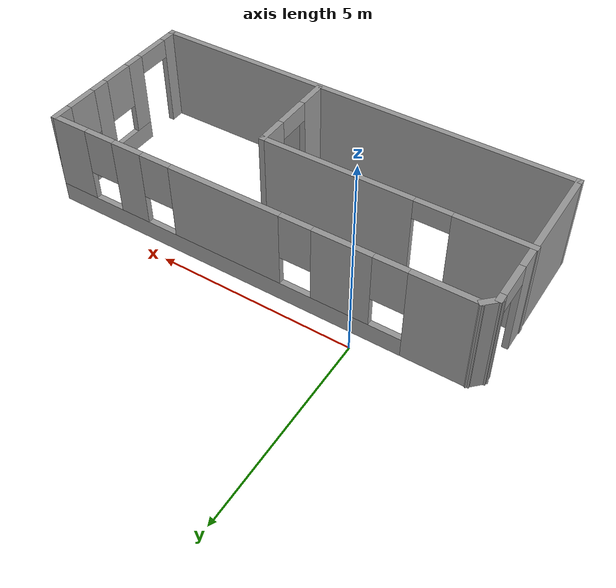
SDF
<?xml version='1.0'?>
<sdf version='1.7'>
  <model name='new-building'>
    <pose>2.73447 -2.4475 0 0 -0 0</pose>
    <link name='Wall_10'>
      <pose>1.04553 -1.1275 0 0 -0 -1.5708</pose>
      <visual name='Wall_10_Visual_0'>
        <pose>-0.8475 0 1.25 0 -0 0</pose>
        <geometry>
          <box>
            <size>0.805 0.15 2.5</size>
          </box>
        </geometry>
        <material>
          <script>
            <uri>file://media/materials/scripts/gazebo.material</uri>
            <name>Gazebo/Grey</name>
          </script>
          <ambient>1 1 1 1</ambient>
        </material>
        <meta>
          <layer>0</layer>
        </meta>
      </visual>
      <collision name='Wall_10_Collision_0'>
        <geometry>
          <box>
            <size>0.805 0.15 2.5</size>
          </box>
        </geometry>
        <pose>-0.8475 0 1.25 0 -0 0</pose>
      </collision>
      <visual name='Wall_10_Visual_1'>
        <pose>0.8525 0 1.25 0 -0 0</pose>
        <geometry>
          <box>
            <size>0.795 0.15 2.5</size>
          </box>
        </geometry>
        <material>
          <script>
            <uri>file://media/materials/scripts/gazebo.material</uri>
            <name>Gazebo/Grey</name>
          </script>
          <ambient>1 1 1 1</ambient>
        </material>
        <meta>
          <layer>0</layer>
        </meta>
      </visual>
      <collision name='Wall_10_Collision_1'>
        <geometry>
          <box>
            <size>0.795 0.15 2.5</size>
          </box>
        </geometry>
        <pose>0.8525 0 1.25 0 -0 0</pose>
      </collision>
      <visual name='Wall_10_Visual_2'>
        <pose>0.005 0 2.25 0 -0 0</pose>
        <geometry>
          <box>
            <size>0.9 0.15 0.5</size>
          </box>
        </geometry>
        <material>
          <script>
            <uri>file://media/materials/scripts/gazebo.material</uri>
            <name>Gazebo/Grey</name>
          </script>
          <ambient>1 1 1 1</ambient>
        </material>
        <meta>
          <layer>0</layer>
        </meta>
      </visual>
      <collision name='Wall_10_Collision_2'>
        <geometry>
          <box>
            <size>0.9 0.15 0.5</size>
          </box>
        </geometry>
        <pose>0.005 0 2.25 0 -0 0</pose>
      </collision>
    </link>
    <link name='Wall_3'>
      <pose>0.140533 1.9775 0 0 -0 0</pose>
      <visual name='Wall_3_Visual_0'>
        <pose>-4.6925 0 1.25 0 -0 0</pose>
        <geometry>
          <box>
            <size>1.615 0.15 2.5</size>
          </box>
        </geometry>
        <material>
          <script>
            <uri>file://media/materials/scripts/gazebo.material</uri>
            <name>Gazebo/Grey</name>
          </script>
          <ambient>1 1 1 1</ambient>
        </material>
        <meta>
          <layer>0</layer>
        </meta>
      </visual>
      <collision name='Wall_3_Collision_0'>
        <geometry>
          <box>
            <size>1.615 0.15 2.5</size>
          </box>
        </geometry>
        <pose>-4.6925 0 1.25 0 -0 0</pose>
      </collision>
      <visual name='Wall_3_Visual_1'>
        <pose>0.8075 0 0.25 0 -0 0</pose>
        <geometry>
          <box>
            <size>9.385 0.15 0.5</size>
          </box>
        </geometry>
        <material>
          <script>
            <uri>file://media/materials/scripts/gazebo.material</uri>
            <name>Gazebo/Grey</name>
          </script>
          <ambient>1 1 1 1</ambient>
        </material>
        <meta>
          <layer>0</layer>
        </meta>
      </visual>
      <collision name='Wall_3_Collision_1'>
        <geometry>
          <box>
            <size>9.385 0.15 0.5</size>
          </box>
        </geometry>
        <pose>0.8075 0 0.25 0 -0 0</pose>
      </collision>
      <visual name='Wall_3_Visual_2'>
        <pose>-2.365 0 1.5 0 -0 0</pose>
        <geometry>
          <box>
            <size>1.44 0.15 2</size>
          </box>
        </geometry>
        <material>
          <script>
            <uri>file://media/materials/scripts/gazebo.material</uri>
            <name>Gazebo/Grey</name>
          </script>
          <ambient>1 1 1 1</ambient>
        </material>
        <meta>
          <layer>0</layer>
        </meta>
      </visual>
      <collision name='Wall_3_Collision_2'>
        <geometry>
          <box>
            <size>1.44 0.15 2</size>
          </box>
        </geometry>
        <pose>-2.365 0 1.5 0 -0 0</pose>
      </collision>
      <visual name='Wall_3_Visual_3'>
        <pose>0.605 0 1.5 0 -0 0</pose>
        <geometry>
          <box>
            <size>2.9 0.15 2</size>
          </box>
        </geometry>
        <material>
          <script>
            <uri>file://media/materials/scripts/gazebo.material</uri>
            <name>Gazebo/Grey</name>
          </script>
          <ambient>1 1 1 1</ambient>
        </material>
        <meta>
          <layer>0</layer>
        </meta>
      </visual>
      <collision name='Wall_3_Collision_3'>
        <geometry>
          <box>
            <size>2.9 0.15 2</size>
          </box>
        </geometry>
        <pose>0.605 0 1.5 0 -0 0</pose>
      </collision>
      <visual name='Wall_3_Visual_4'>
        <pose>3.26 0 1.5 0 -0 0</pose>
        <geometry>
          <box>
            <size>0.81 0.15 2</size>
          </box>
        </geometry>
        <material>
          <script>
            <uri>file://media/materials/scripts/gazebo.material</uri>
            <name>Gazebo/Grey</name>
          </script>
          <ambient>1 1 1 1</ambient>
        </material>
        <meta>
          <layer>0</layer>
        </meta>
      </visual>
      <collision name='Wall_3_Collision_4'>
        <geometry>
          <box>
            <size>0.81 0.15 2</size>
          </box>
        </geometry>
        <pose>3.26 0 1.5 0 -0 0</pose>
      </collision>
      <visual name='Wall_3_Visual_5'>
        <pose>4.9825 0 1.5 0 -0 0</pose>
        <geometry>
          <box>
            <size>1.035 0.15 2</size>
          </box>
        </geometry>
        <material>
          <script>
            <uri>file://media/materials/scripts/gazebo.material</uri>
            <name>Gazebo/Grey</name>
          </script>
          <ambient>1 1 1 1</ambient>
        </material>
        <meta>
          <layer>0</layer>
        </meta>
      </visual>
      <collision name='Wall_3_Collision_5'>
        <geometry>
          <box>
            <size>1.035 0.15 2</size>
          </box>
        </geometry>
        <pose>4.9825 0 1.5 0 -0 0</pose>
      </collision>
      <visual name='Wall_3_Visual_6'>
        <pose>-3.485 0 1.9 0 -0 0</pose>
        <geometry>
          <box>
            <size>0.8 0.15 1.2</size>
          </box>
        </geometry>
        <material>
          <script>
            <uri>file://media/materials/scripts/gazebo.material</uri>
            <name>Gazebo/Grey</name>
          </script>
          <ambient>1 1 1 1</ambient>
        </material>
        <meta>
          <layer>0</layer>
        </meta>
      </visual>
      <collision name='Wall_3_Collision_6'>
        <geometry>
          <box>
            <size>0.8 0.15 1.2</size>
          </box>
        </geometry>
        <pose>-3.485 0 1.9 0 -0 0</pose>
      </collision>
      <visual name='Wall_3_Visual_7'>
        <pose>-1.245 0 1.9 0 -0 0</pose>
        <geometry>
          <box>
            <size>0.8 0.15 1.2</size>
          </box>
        </geometry>
        <material>
          <script>
            <uri>file://media/materials/scripts/gazebo.material</uri>
            <name>Gazebo/Grey</name>
          </script>
          <ambient>1 1 1 1</ambient>
        </material>
        <meta>
          <layer>0</layer>
        </meta>
      </visual>
      <collision name='Wall_3_Collision_7'>
        <geometry>
          <box>
            <size>0.8 0.15 1.2</size>
          </box>
        </geometry>
        <pose>-1.245 0 1.9 0 -0 0</pose>
      </collision>
      <visual name='Wall_3_Visual_8'>
        <pose>2.455 0 1.9 0 -0 0</pose>
        <geometry>
          <box>
            <size>0.8 0.15 1.2</size>
          </box>
        </geometry>
        <material>
          <script>
            <uri>file://media/materials/scripts/gazebo.material</uri>
            <name>Gazebo/Grey</name>
          </script>
          <ambient>1 1 1 1</ambient>
        </material>
        <meta>
          <layer>0</layer>
        </meta>
      </visual>
      <collision name='Wall_3_Collision_8'>
        <geometry>
          <box>
            <size>0.8 0.15 1.2</size>
          </box>
        </geometry>
        <pose>2.455 0 1.9 0 -0 0</pose>
      </collision>
      <visual name='Wall_3_Visual_9'>
        <pose>4.065 0 1.9 0 -0 0</pose>
        <geometry>
          <box>
            <size>0.8 0.15 1.2</size>
          </box>
        </geometry>
        <material>
          <script>
            <uri>file://media/materials/scripts/gazebo.material</uri>
            <name>Gazebo/Grey</name>
          </script>
          <ambient>1 1 1 1</ambient>
        </material>
        <meta>
          <layer>0</layer>
        </meta>
      </visual>
      <collision name='Wall_3_Collision_9'>
        <geometry>
          <box>
            <size>0.8 0.15 1.2</size>
          </box>
        </geometry>
        <pose>4.065 0 1.9 0 -0 0</pose>
      </collision>
    </link>
    <link name='Wall_4'>
      <pose>5.56553 -0.1975 0 0 -0 -1.5708</pose>
      <visual name='Wall_4_Visual_0'>
        <pose>-1.9825 0 1.25 0 -0 0</pose>
        <geometry>
          <box>
            <size>0.535 0.15 2.5</size>
          </box>
        </geometry>
        <material>
          <script>
            <uri>file://media/materials/scripts/gazebo.material</uri>
            <name>Gazebo/Grey</name>
          </script>
          <ambient>1 1 1 1</ambient>
        </material>
        <meta>
          <layer>0</layer>
        </meta>
      </visual>
      <collision name='Wall_4_Collision_0'>
        <geometry>
          <box>
            <size>0.535 0.15 2.5</size>
          </box>
        </geometry>
        <pose>-1.9825 0 1.25 0 -0 0</pose>
      </collision>
      <visual name='Wall_4_Visual_1'>
        <pose>1.9975 0 1.25 0 -0 0</pose>
        <geometry>
          <box>
            <size>0.505 0.15 2.5</size>
          </box>
        </geometry>
        <material>
          <script>
            <uri>file://media/materials/scripts/gazebo.material</uri>
            <name>Gazebo/Grey</name>
          </script>
          <ambient>1 1 1 1</ambient>
        </material>
        <meta>
          <layer>0</layer>
        </meta>
      </visual>
      <collision name='Wall_4_Collision_1'>
        <geometry>
          <box>
            <size>0.505 0.15 2.5</size>
          </box>
        </geometry>
        <pose>1.9975 0 1.25 0 -0 0</pose>
      </collision>
      <visual name='Wall_4_Visual_2'>
        <pose>-0.435 0 0.25 0 -0 0</pose>
        <geometry>
          <box>
            <size>2.56 0.15 0.5</size>
          </box>
        </geometry>
        <material>
          <script>
            <uri>file://media/materials/scripts/gazebo.material</uri>
            <name>Gazebo/Grey</name>
          </script>
          <ambient>1 1 1 1</ambient>
        </material>
        <meta>
          <layer>0</layer>
        </meta>
      </visual>
      <collision name='Wall_4_Collision_2'>
        <geometry>
          <box>
            <size>2.56 0.15 0.5</size>
          </box>
        </geometry>
        <pose>-0.435 0 0.25 0 -0 0</pose>
      </collision>
      <visual name='Wall_4_Visual_3'>
        <pose>-0.68 0 1.5 0 -0 0</pose>
        <geometry>
          <box>
            <size>0.47 0.15 2</size>
          </box>
        </geometry>
        <material>
          <script>
            <uri>file://media/materials/scripts/gazebo.material</uri>
            <name>Gazebo/Grey</name>
          </script>
          <ambient>1 1 1 1</ambient>
        </material>
        <meta>
          <layer>0</layer>
        </meta>
      </visual>
      <collision name='Wall_4_Collision_3'>
        <geometry>
          <box>
            <size>0.47 0.15 2</size>
          </box>
        </geometry>
        <pose>-0.68 0 1.5 0 -0 0</pose>
      </collision>
      <visual name='Wall_4_Visual_4'>
        <pose>0.6 0 1.5 0 -0 0</pose>
        <geometry>
          <box>
            <size>0.49 0.15 2</size>
          </box>
        </geometry>
        <material>
          <script>
            <uri>file://media/materials/scripts/gazebo.material</uri>
            <name>Gazebo/Grey</name>
          </script>
          <ambient>1 1 1 1</ambient>
        </material>
        <meta>
          <layer>0</layer>
        </meta>
      </visual>
      <collision name='Wall_4_Collision_4'>
        <geometry>
          <box>
            <size>0.49 0.15 2</size>
          </box>
        </geometry>
        <pose>0.6 0 1.5 0 -0 0</pose>
      </collision>
      <visual name='Wall_4_Visual_5'>
        <pose>-1.315 0 1.9 0 -0 0</pose>
        <geometry>
          <box>
            <size>0.8 0.15 1.2</size>
          </box>
        </geometry>
        <material>
          <script>
            <uri>file://media/materials/scripts/gazebo.material</uri>
            <name>Gazebo/Grey</name>
          </script>
          <ambient>1 1 1 1</ambient>
        </material>
        <meta>
          <layer>0</layer>
        </meta>
      </visual>
      <collision name='Wall_4_Collision_5'>
        <geometry>
          <box>
            <size>0.8 0.15 1.2</size>
          </box>
        </geometry>
        <pose>-1.315 0 1.9 0 -0 0</pose>
      </collision>
      <visual name='Wall_4_Visual_6'>
        <pose>-0.045 0 1.9 0 -0 0</pose>
        <geometry>
          <box>
            <size>0.8 0.15 1.2</size>
          </box>
        </geometry>
        <material>
          <script>
            <uri>file://media/materials/scripts/gazebo.material</uri>
            <name>Gazebo/Grey</name>
          </script>
          <ambient>1 1 1 1</ambient>
        </material>
        <meta>
          <layer>0</layer>
        </meta>
      </visual>
      <collision name='Wall_4_Collision_6'>
        <geometry>
          <box>
            <size>0.8 0.15 1.2</size>
          </box>
        </geometry>
        <pose>-0.045 0 1.9 0 -0 0</pose>
      </collision>
      <visual name='Wall_4_Visual_7'>
        <pose>1.295 0 2.25 0 -0 0</pose>
        <geometry>
          <box>
            <size>0.9 0.15 0.5</size>
          </box>
        </geometry>
        <material>
          <script>
            <uri>file://media/materials/scripts/gazebo.material</uri>
            <name>Gazebo/Grey</name>
          </script>
          <ambient>1 1 1 1</ambient>
        </material>
        <meta>
          <layer>0</layer>
        </meta>
      </visual>
      <collision name='Wall_4_Collision_7'>
        <geometry>
          <box>
            <size>0.9 0.15 0.5</size>
          </box>
        </geometry>
        <pose>1.295 0 2.25 0 -0 0</pose>
      </collision>
    </link>
    <link name='Wall_5'>
      <collision name='Wall_5_Collision'>
        <geometry>
          <box>
            <size>11.25 0.15 2.5</size>
          </box>
        </geometry>
        <pose>0 0 1.25 0 -0 0</pose>
      </collision>
      <visual name='Wall_5_Visual'>
        <pose>0 0 1.25 0 -0 0</pose>
        <geometry>
          <box>
            <size>11.25 0.15 2.5</size>
          </box>
        </geometry>
        <material>
          <script>
            <uri>file://media/materials/scripts/gazebo.material</uri>
            <name>Gazebo/Grey</name>
          </script>
          <ambient>1 1 1 1</ambient>
        </material>
        <meta>
          <layer>0</layer>
        </meta>
      </visual>
      <pose>0.015533 -2.3725 0 0 -0 3.14159</pose>
    </link>
    <link name='Wall_6'>
      <pose>-5.53447 -0.3225 0 0 -0 1.5708</pose>
      <visual name='Wall_6_Visual_0'>
        <pose>-0.5725 0 1.25 0 -0 0</pose>
        <geometry>
          <box>
            <size>3.105 0.15 2.5</size>
          </box>
        </geometry>
        <material>
          <script>
            <uri>file://media/materials/scripts/gazebo.material</uri>
            <name>Gazebo/Grey</name>
          </script>
          <ambient>1 1 1 1</ambient>
        </material>
        <meta>
          <layer>0</layer>
        </meta>
      </visual>
      <collision name='Wall_6_Collision_0'>
        <geometry>
          <box>
            <size>3.105 0.15 2.5</size>
          </box>
        </geometry>
        <pose>-0.5725 0 1.25 0 -0 0</pose>
      </collision>
      <visual name='Wall_6_Visual_1'>
        <pose>2.0025 0 1.25 0 -0 0</pose>
        <geometry>
          <box>
            <size>0.245 0.15 2.5</size>
          </box>
        </geometry>
        <material>
          <script>
            <uri>file://media/materials/scripts/gazebo.material</uri>
            <name>Gazebo/Grey</name>
          </script>
          <ambient>1 1 1 1</ambient>
        </material>
        <meta>
          <layer>0</layer>
        </meta>
      </visual>
      <collision name='Wall_6_Collision_1'>
        <geometry>
          <box>
            <size>0.245 0.15 2.5</size>
          </box>
        </geometry>
        <pose>2.0025 0 1.25 0 -0 0</pose>
      </collision>
      <visual name='Wall_6_Visual_2'>
        <pose>1.43 0 2.25 0 -0 0</pose>
        <geometry>
          <box>
            <size>0.9 0.15 0.5</size>
          </box>
        </geometry>
        <material>
          <script>
            <uri>file://media/materials/scripts/gazebo.material</uri>
            <name>Gazebo/Grey</name>
          </script>
          <ambient>1 1 1 1</ambient>
        </material>
        <meta>
          <layer>0</layer>
        </meta>
      </visual>
      <collision name='Wall_6_Collision_2'>
        <geometry>
          <box>
            <size>0.9 0.15 0.5</size>
          </box>
        </geometry>
        <pose>1.43 0 2.25 0 -0 0</pose>
      </collision>
    </link>
    <link name='Wall_7'>
      <collision name='Wall_7_Collision'>
        <geometry>
          <box>
            <size>0.503553 0.15 2.5</size>
          </box>
        </geometry>
        <pose>0 0 1.25 0 -0 0</pose>
      </collision>
      <visual name='Wall_7_Visual'>
        <pose>0 0 1.25 0 -0 0</pose>
        <geometry>
          <box>
            <size>0.503553 0.15 2.5</size>
          </box>
        </geometry>
        <material>
          <script>
            <uri>file://media/materials/scripts/gazebo.material</uri>
            <name>Gazebo/Grey</name>
          </script>
          <ambient>1 1 1 1</ambient>
        </material>
        <meta>
          <layer>0</layer>
        </meta>
      </visual>
      <pose>-5.40947 1.8525 0 0 -0 0.785398</pose>
    </link>
    <link name='Wall_9'>
      <pose>-2.25447 0.0475 0 0 -0 0</pose>
      <visual name='Wall_9_Visual_0'>
        <pose>-2.4225 0 1.25 0 -0 0</pose>
        <geometry>
          <box>
            <size>1.905 0.15 2.5</size>
          </box>
        </geometry>
        <material>
          <script>
            <uri>file://media/materials/scripts/gazebo.material</uri>
            <name>Gazebo/Grey</name>
          </script>
          <ambient>1 1 1 1</ambient>
        </material>
        <meta>
          <layer>0</layer>
        </meta>
      </visual>
      <collision name='Wall_9_Collision_0'>
        <geometry>
          <box>
            <size>1.905 0.15 2.5</size>
          </box>
        </geometry>
        <pose>-2.4225 0 1.25 0 -0 0</pose>
      </collision>
      <visual name='Wall_9_Visual_1'>
        <pose>1.4025 0 1.25 0 -0 0</pose>
        <geometry>
          <box>
            <size>3.945 0.15 2.5</size>
          </box>
        </geometry>
        <material>
          <script>
            <uri>file://media/materials/scripts/gazebo.material</uri>
            <name>Gazebo/Grey</name>
          </script>
          <ambient>1 1 1 1</ambient>
        </material>
        <meta>
          <layer>0</layer>
        </meta>
      </visual>
      <collision name='Wall_9_Collision_1'>
        <geometry>
          <box>
            <size>3.945 0.15 2.5</size>
          </box>
        </geometry>
        <pose>1.4025 0 1.25 0 -0 0</pose>
      </collision>
      <visual name='Wall_9_Visual_2'>
        <pose>-1.02 0 2.25 0 -0 0</pose>
        <geometry>
          <box>
            <size>0.9 0.15 0.5</size>
          </box>
        </geometry>
        <material>
          <script>
            <uri>file://media/materials/scripts/gazebo.material</uri>
            <name>Gazebo/Grey</name>
          </script>
          <ambient>1 1 1 1</ambient>
        </material>
        <meta>
          <layer>0</layer>
        </meta>
      </visual>
      <collision name='Wall_9_Collision_2'>
        <geometry>
          <box>
            <size>0.9 0.15 0.5</size>
          </box>
        </geometry>
        <pose>-1.02 0 2.25 0 -0 0</pose>
      </collision>
    </link>
    <static>1</static>
  </model>
</sdf>
